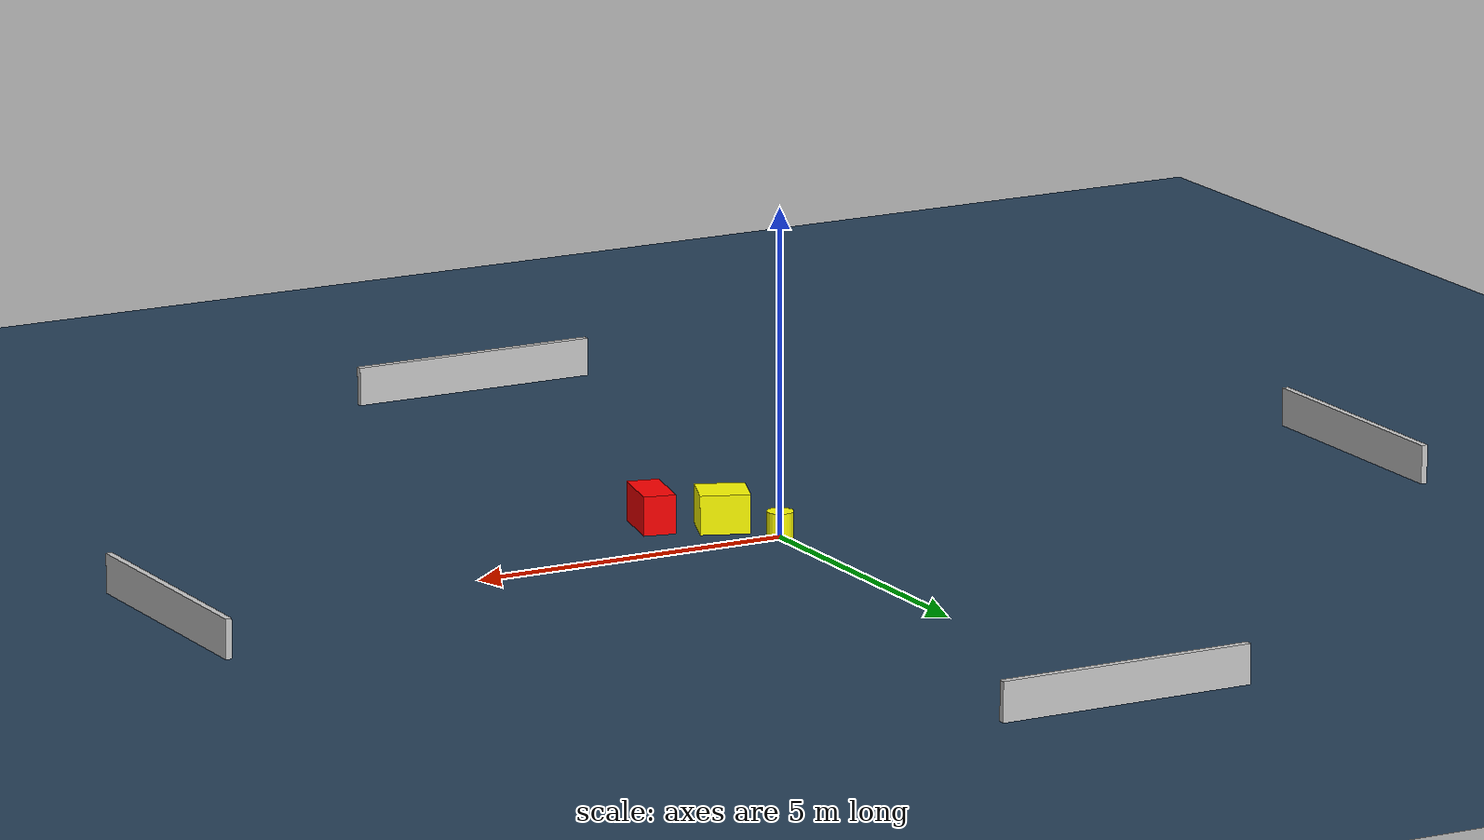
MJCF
<?xml version="1.0" ?>
<mujoco model="generated_environment">
  <option timestep="0.01" integrator="RK4" cone="elliptic"/>
  <default>
    <geom density="1"/>
  </default>
  <asset>
    <texture builtin="gradient" height="3072" name="skybox" rgb1="0.3 0.5 0.7" rgb2="0 0 0" type="skybox" width="512"/>
    <texture builtin="checker" height="300" name="groundplane" rgb1="0.2 0.3 0.4" rgb2="0.1 0.2 0.3" type="2d" width="300"/>
    <material name="groundplane" reflectance="0.2" texrepeat="5 5" texture="groundplane"/>
  </asset>
  <worldbody>
    <light dir="0 0 -1" directional="true" pos="0 0 1.5"/>
    <geom condim="3" friction="0.5 0.005 0.001" material="groundplane" name="floor" pos="0 0 0" size="0 0 0.05" type="plane"/>
    <body name="walls">
      <geom name="wall_1" condim="4" pos="-10.0 0.0 0.3" rgba="0.800000011920929 0.800000011920929 0.800000011920929 1.0" size="0.05 2.0 0.3" type="box"/>
      <geom name="wall_2" condim="4" pos="10.0 0.0 0.3" rgba="0.800000011920929 0.800000011920929 0.800000011920929 1.0" size="0.05 2.0 0.3" type="box"/>
      <geom name="wall_3" condim="4" pos="0.0 -10.0 0.3" rgba="0.800000011920929 0.800000011920929 0.800000011920929 1.0" size="2.0 0.05 0.3" type="box"/>
      <geom name="wall_4" condim="4" pos="0.0 10.0 0.3" rgba="0.800000011920929 0.800000011920929 0.800000011920929 1.0" size="2.0 0.05 0.3" type="box"/>
    </body>
    <body name="robot">
      <joint name="joint_x" type="slide" pos="0 0 0" axis="1 0 0"/>
      <joint name="joint_y" type="slide" pos="0 0 0" axis="0 1 0"/>
      <geom name="robot" type="cylinder" pos="0.0 0.0 0.2" size="0.2 0.2 0.0" mass="5.0" friction="1.0 0.005 0.0001" condim="4" rgba="1.0 1.0 0.0 1.0"/>
    </body>
    <body name="obstacle_1_movable">
      <geom name="obstacle_1_movable" condim="4" pos="0.5166845772047678 -0.8439730218287987 0.3" euler="0 0 158.5788517181661" friction="0.0 0.005 0.001" rgba="1.0 1.0 0.0 1.0" size="0.37986576801574234 0.35651898362923484 0.3" type="box" mass="0.1"/>
      <joint type="free"/>
    </body>
    <body name="obstacle_2_static">
      <geom name="obstacle_2_static" condim="4" pos="1.409095303854018 -1.4166443142677263 0.3" euler="0 0 257.48191901529657" friction="0.0 0.005 0.001" rgba="1.0 0.0 0.0 1.0" size="0.47569322173760104 0.24902200235939898 0.3" type="box"/>
    </body>
  </worldbody>
  <actuator>
    <motor name="actuator_x" joint="joint_x" gear="1" ctrlrange="-1 1"/>
    <motor name="actuator_y" joint="joint_y" gear="1" ctrlrange="-1 1"/>
  </actuator>
</mujoco>
